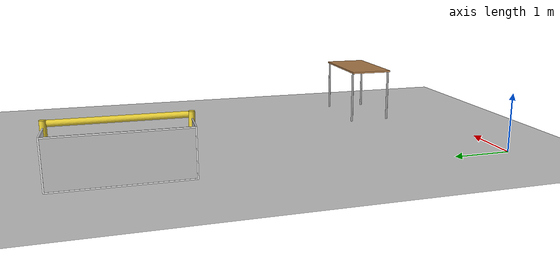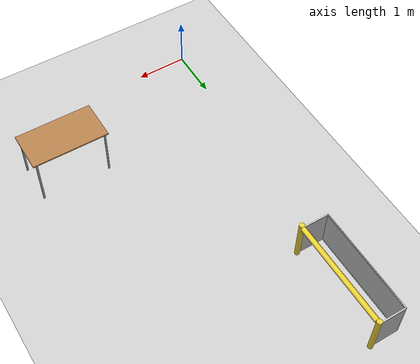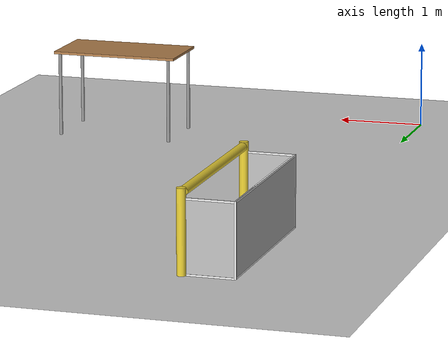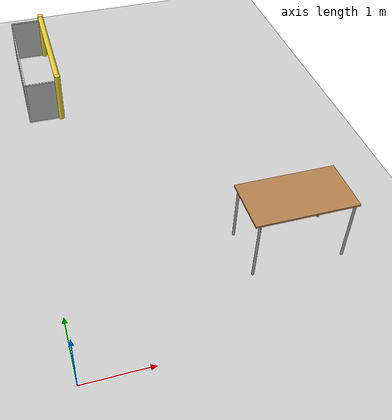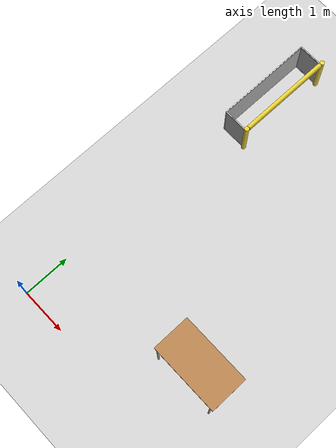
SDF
<sdf version="1.7">
 <world name="default">
  <model name="ground_plane">
   <static>1</static>
   <link name="link">
    <collision name="collision">
     <geometry><plane><normal>0 0 1</normal><size>100 100</size></plane></geometry>
     <surface><friction><ode><mu>100</mu><mu2>50</mu2></ode></friction></surface>
    </collision>
    <visual name="visual">
     <cast_shadows>0</cast_shadows>
     <geometry><plane><normal>0 0 1</normal><size>100 100</size></plane></geometry>
     <material>
      <script><uri>file://media/materials/scripts/gazebo.material</uri><name>Gazebo/Grey</name></script>
     </material>
    </visual>
   </link>
  </model>
  <model name="robocup_3d_goal_1">
   <static>1</static>
   <link name="left_post">
    <pose>0 1.05 0.45 0 -0 0</pose>
    <collision name="collision">
     <geometry><cylinder><radius>0.05</radius><length>0.9</length></cylinder></geometry>
    </collision>
    <visual name="visual">
     <geometry><cylinder><radius>0.05</radius><length>0.9</length></cylinder></geometry>
     <material>
      <script><uri>file://media/materials/scripts/gazebo.material</uri><name>Gazebo/ZincYellow</name></script>
     </material>
    </visual>
   </link>
   <link name="left_support_horiz_lower">
    <pose>0.3 1.05 0.01 0 -0 0</pose>
    <collision name="collision"><geometry><box><size>0.5 0.02 0.02</size></box></geometry></collision>
    <visual name="visual">
     <geometry><box><size>0.5 0.02 0.02</size></box></geometry>
     <material>
      <script><uri>file://media/materials/scripts/gazebo.material</uri><name>Gazebo/White</name></script>
     </material>
    </visual>
   </link>
   <link name="left_support_horiz_upper">
    <pose>0.3 1.05 0.79 0 -0 0</pose>
    <collision name="collision"><geometry><box><size>0.5 0.02 0.02</size></box></geometry></collision>
    <visual name="visual">
     <geometry><box><size>0.5 0.02 0.02</size></box></geometry>
     <material>
      <script><uri>file://media/materials/scripts/gazebo.material</uri><name>Gazebo/White</name></script>
     </material>
    </visual>
   </link>
   <link name="left_support_vertical">
    <pose>0.56 1.05 0.4 3.14159 1.57079 3.14159</pose>
    <collision name="collision"><geometry><box><size>0.8 0.02 0.02</size></box></geometry></collision>
    <visual name="visual">
     <geometry><box><size>0.8 0.02 0.02</size></box></geometry>
     <material>
      <script><uri>file://media/materials/scripts/gazebo.material</uri><name>Gazebo/White</name></script>
     </material>
    </visual>
   </link>
   <link name="right_support_horiz_lower">
    <pose>0.3 -1.05 0.01 0 -0 0</pose>
    <collision name="collision"><geometry><box><size>0.5 0.02 0.02</size></box></geometry></collision>
    <visual name="visual">
     <geometry><box><size>0.5 0.02 0.02</size></box></geometry>
     <material>
      <script><uri>file://media/materials/scripts/gazebo.material</uri><name>Gazebo/White</name></script>
     </material>
    </visual>
   </link>
   <link name="right_support_horiz_upper">
    <pose>0.3 -1.05 0.79 0 -0 0</pose>
    <collision name="collision"><geometry><box><size>0.5 0.02 0.02</size></box></geometry></collision>
    <visual name="visual">
     <geometry><box><size>0.5 0.02 0.02</size></box></geometry>
     <material>
      <script><uri>file://media/materials/scripts/gazebo.material</uri><name>Gazebo/White</name></script>
     </material>
    </visual>
   </link>
   <link name="right_support_vertical">
    <pose>0.56 -1.05 0.4 3.14159 1.57079 3.14159</pose>
    <collision name="collision"><geometry><box><size>0.8 0.02 0.02</size></box></geometry></collision>
    <visual name="visual">
     <geometry><box><size>0.8 0.02 0.02</size></box></geometry>
     <material>
      <script><uri>file://media/materials/scripts/gazebo.material</uri><name>Gazebo/White</name></script>
     </material>
    </visual>
   </link>
   <link name="center_support_horiz_lower">
    <pose>0.56 0 0.01 3.14159 1.57079 3.14159</pose>
    <collision name="collision"><geometry><box><size>0.02 2.08 0.02</size></box></geometry></collision>
    <visual name="visual">
     <geometry><box><size>0.02 2.08 0.02</size></box></geometry>
     <material>
      <script><uri>file://media/materials/scripts/gazebo.material</uri><name>Gazebo/White</name></script>
     </material>
    </visual>
   </link>
   <link name="center_support_horiz_upper">
    <pose>0.56 0 0.79 3.14159 1.57079 3.14159</pose>
    <collision name="collision"><geometry><box><size>0.02 2.08 0.02</size></box></geometry></collision>
    <visual name="visual">
     <geometry><box><size>0.02 2.08 0.02</size></box></geometry>
     <material>
      <script><uri>file://media/materials/scripts/gazebo.material</uri><name>Gazebo/White</name></script>
     </material>
    </visual>
   </link>
   <link name="right_post">
    <pose>0 -1.05 0.45 0 -0 0</pose>
    <collision name="collision">
     <geometry><cylinder><radius>0.05</radius><length>0.9</length></cylinder></geometry>
    </collision>
    <visual name="visual">
     <geometry><cylinder><radius>0.05</radius><length>0.9</length></cylinder></geometry>
     <material>
      <script><uri>file://media/materials/scripts/gazebo.material</uri><name>Gazebo/ZincYellow</name></script>
     </material>
    </visual>
   </link>
   <link name="crossbar">
    <pose>0 0 0.85 1.57 1.57 0</pose>
    <collision name="collision">
     <geometry><cylinder><radius>0.05</radius><length>2</length></cylinder></geometry>
    </collision>
    <visual name="visual">
     <geometry><cylinder><radius>0.05</radius><length>2</length></cylinder></geometry>
     <material>
      <script><uri>file://media/materials/scripts/gazebo.material</uri><name>Gazebo/ZincYellow</name></script>
     </material>
    </visual>
   </link>
   <link name="center_net">
    <pose>0.56 0 0.4 0 -0 0</pose>
    <collision name="collision"><geometry><box><size>0.01 2.1 0.8</size></box></geometry></collision>
    <visual name="visual">
     <geometry><box><size>0.01 2.1 0.8</size></box></geometry>
     <material>
      <script>
       <uri>model://robocup09_spl_field/materials/scripts/</uri>
       <uri>model://robocup09_spl_field/materials/textures/</uri>
       <name>RoboCup/Net</name>
      </script>
     </material>
    </visual>
   </link>
   <link name="left_net">
    <pose>0.3 1.05 0.4 0 -0 0</pose>
    <collision name="collision"><geometry><box><size>0.5 0.01 0.76</size></box></geometry></collision>
    <visual name="visual">
     <geometry><box><size>0.5 0.01 0.76</size></box></geometry>
     <material>
      <script>
       <uri>model://robocup09_spl_field/materials/scripts/</uri>
       <uri>model://robocup09_spl_field/materials/textures/</uri>
       <name>RoboCup/Net</name>
      </script>
     </material>
    </visual>
   </link>
   <link name="right_net">
    <pose>0.3 -1.05 0.4 0 -0 0</pose>
    <collision name="collision"><geometry><box><size>0.5 0.01 0.76</size></box></geometry></collision>
    <visual name="visual">
     <geometry><box><size>0.5 0.01 0.76</size></box></geometry>
     <material>
      <script>
       <uri>model://robocup09_spl_field/materials/scripts/</uri>
       <uri>model://robocup09_spl_field/materials/textures/</uri>
       <name>RoboCup/Net</name>
      </script>
     </material>
    </visual>
   </link>
   <pose>0.669022 6.23216 0 0 -0 3.1395</pose>
  </model>
  <model name="table_0">
   <static>1</static>
   <link name="link">
    <collision name="surface">
     <pose>0 0 1 0 -0 0</pose>
     <geometry><box><size>1.5 0.8 0.03</size></box></geometry>
     <surface><friction><ode><mu>0.6</mu><mu2>0.6</mu2></ode></friction></surface>
    </collision>
    <visual name="visual1">
     <pose>0 0 1 0 -0 0</pose>
     <geometry><box><size>1.5 0.8 0.03</size></box></geometry>
     <material>
      <script><uri>file://media/materials/scripts/gazebo.material</uri><name>Gazebo/Wood</name></script>
     </material>
    </visual>
    <collision name="front_left_leg">
     <pose>0.68 0.38 0.5 0 -0 0</pose>
     <geometry><cylinder><radius>0.02</radius><length>1</length></cylinder></geometry>
    </collision>
    <visual name="front_left_leg">
     <pose>0.68 0.38 0.5 0 -0 0</pose>
     <geometry><cylinder><radius>0.02</radius><length>1</length></cylinder></geometry>
     <material>
      <script><uri>file://media/materials/scripts/gazebo.material</uri><name>Gazebo/Grey</name></script>
     </material>
    </visual>
    <collision name="front_right_leg">
     <pose>0.68 -0.38 0.5 0 -0 0</pose>
     <geometry><cylinder><radius>0.02</radius><length>1</length></cylinder></geometry>
    </collision>
    <visual name="front_right_leg">
     <pose>0.68 -0.38 0.5 0 -0 0</pose>
     <geometry><cylinder><radius>0.02</radius><length>1</length></cylinder></geometry>
     <material>
      <script><uri>file://media/materials/scripts/gazebo.material</uri><name>Gazebo/Grey</name></script>
     </material>
    </visual>
    <collision name="back_right_leg">
     <pose>-0.68 -0.38 0.5 0 -0 0</pose>
     <geometry><cylinder><radius>0.02</radius><length>1</length></cylinder></geometry>
    </collision>
    <visual name="back_right_leg">
     <pose>-0.68 -0.38 0.5 0 -0 0</pose>
     <geometry><cylinder><radius>0.02</radius><length>1</length></cylinder></geometry>
     <material>
      <script><uri>file://media/materials/scripts/gazebo.material</uri><name>Gazebo/Grey</name></script>
     </material>
    </visual>
    <collision name="back_left_leg">
     <pose>-0.68 0.38 0.5 0 -0 0</pose>
     <geometry><cylinder><radius>0.02</radius><length>1</length></cylinder></geometry>
    </collision>
    <visual name="back_left_leg">
     <pose>-0.68 0.38 0.5 0 -0 0</pose>
     <geometry><cylinder><radius>0.02</radius><length>1</length></cylinder></geometry>
     <material>
      <script><uri>file://media/materials/scripts/gazebo.material</uri><name>Gazebo/Grey</name></script>
     </material>
    </visual>
   </link>
   <pose>3.33548 1.38307 0 0 -0 0</pose>
  </model>
 </world>
</sdf>
